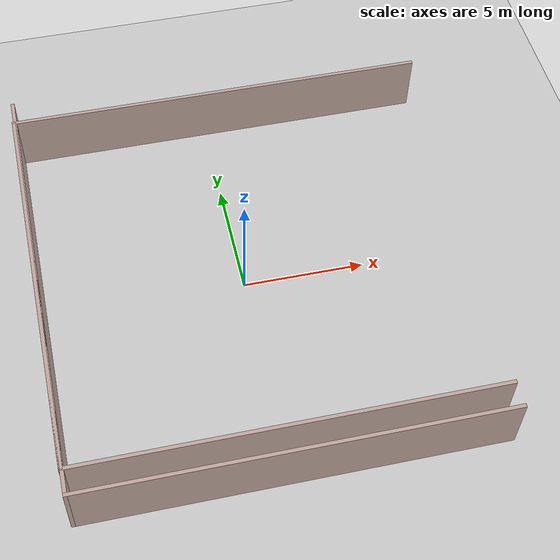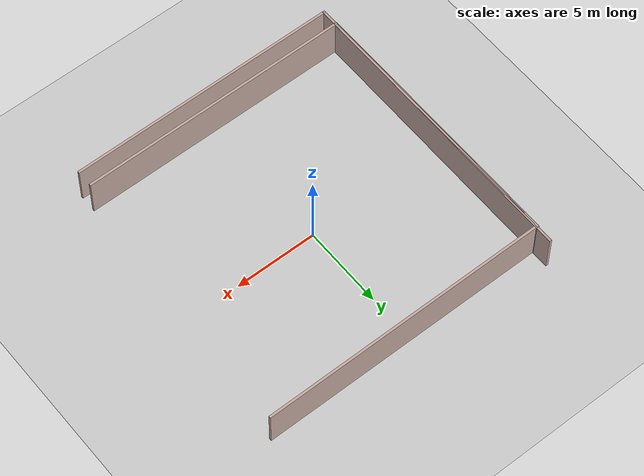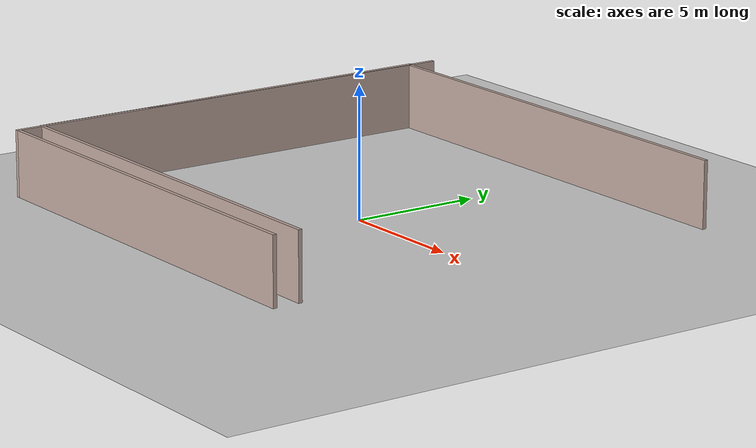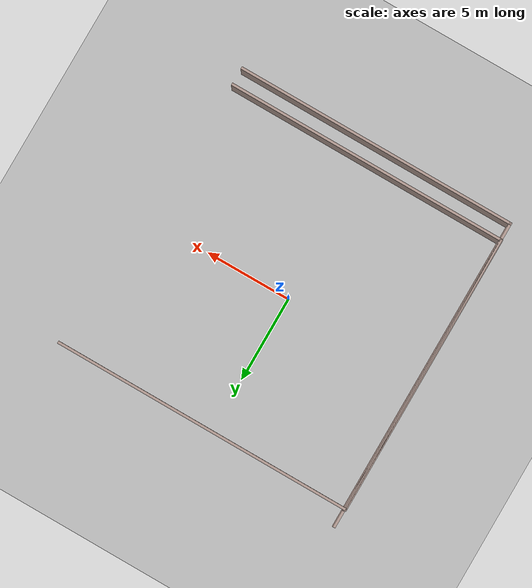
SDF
<sdf version="1.6">
 <world name="world04">
  <include><uri>model://ground_plane</uri></include>
  <include><uri>model://sun</uri></include>
  <include><uri>model://wall</uri><pose>0.5 0 0.5 0 0 0</pose></include>
  <include><uri>model://wall</uri><pose>0 0.5 0.5 0 0 1.57</pose></include>
  <include><uri>model://wall</uri><pose>0 -0.5 0.5 0 0 1.57</pose></include>
 </world>
</sdf>

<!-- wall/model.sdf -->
<sdf version='1.6'>
  <model name='wall'>
    <pose frame=''>-1.26581 1.80502 0 0 -0 0</pose>
    <link name='Wall_0'>
      <collision name='Wall_0_Collision'>
        <geometry>
          <box>
            <size>16.5 0.15 2.5</size>
          </box>
        </geometry>
        <pose frame=''>0 0 1.25 0 -0 0</pose>
      </collision>
      <visual name='Wall_0_Visual'>
        <pose frame=''>0 0 1.25 0 -0 0</pose>
        <geometry>
          <box>
            <size>16.5 0.15 2.5</size>
          </box>
        </geometry>
        <material>
          <script>
            <uri>file://media/materials/scripts/gazebo.material</uri>
            <name>Gazebo/Grey</name>
          </script>
          <ambient>0.760784 0.662745 0.627451 1</ambient>
        </material>
        <meta>
          <layer>0</layer>
        </meta>
      </visual>
      <pose frame=''>-8.71419 -1.8e-05 0 0 0 -1.5708</pose>
    </link>
    <link name='Wall_2'>
      <collision name='Wall_2_Collision'>
        <geometry>
          <box>
            <size>17.5784 0.15 2.5</size>
          </box>
        </geometry>
        <pose frame=''>0 0 1.25 0 -0 0</pose>
      </collision>
      <visual name='Wall_2_Visual'>
        <pose frame=''>0 0 1.25 0 -0 0</pose>
        <geometry>
          <box>
            <size>17.5784 0.15 2.5</size>
          </box>
        </geometry>
        <material>
          <script>
            <uri>file://media/materials/scripts/gazebo.material</uri>
            <name>Gazebo/Grey</name>
          </script>
          <ambient>0.760784 0.662745 0.627451 1</ambient>
        </material>
        <meta>
          <layer>0</layer>
        </meta>
      </visual>
      <pose frame=''>0 8.17066 0 0 0 -0.000496</pose>
    </link>
    <static>1</static>
  </model>
</sdf>
